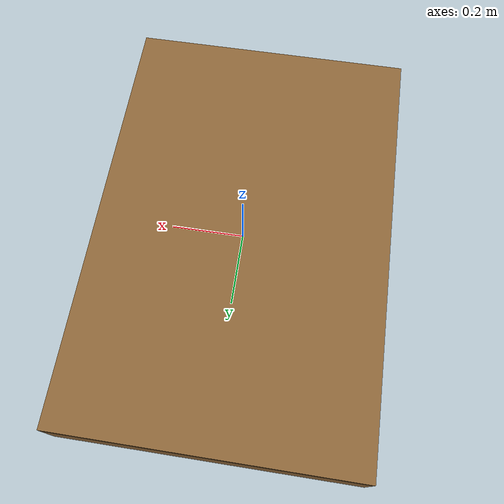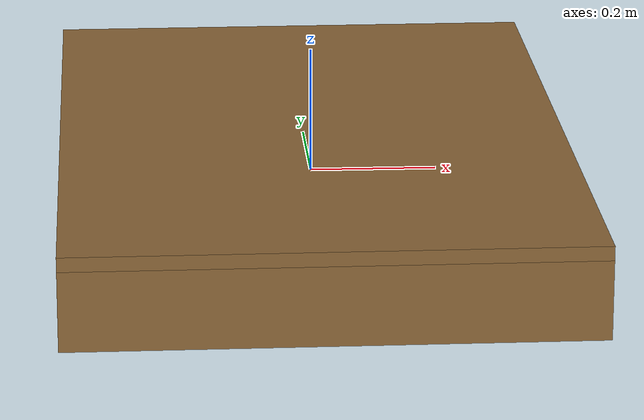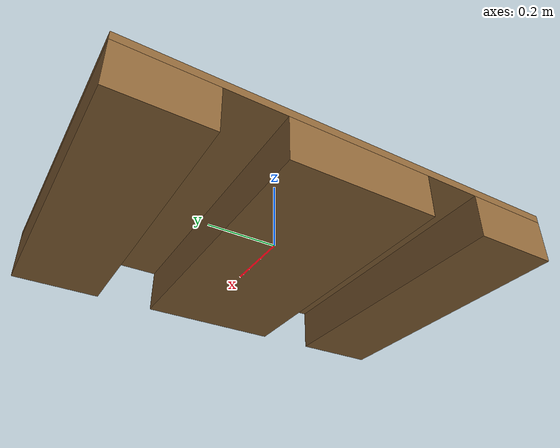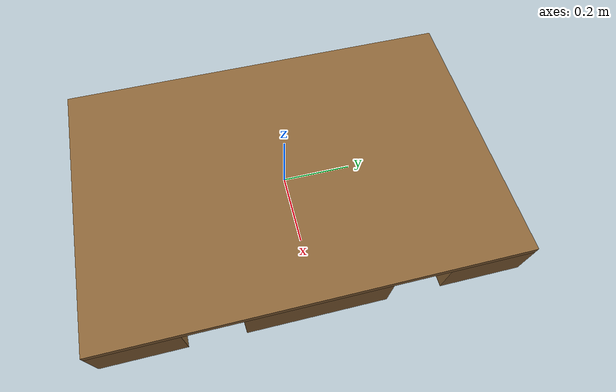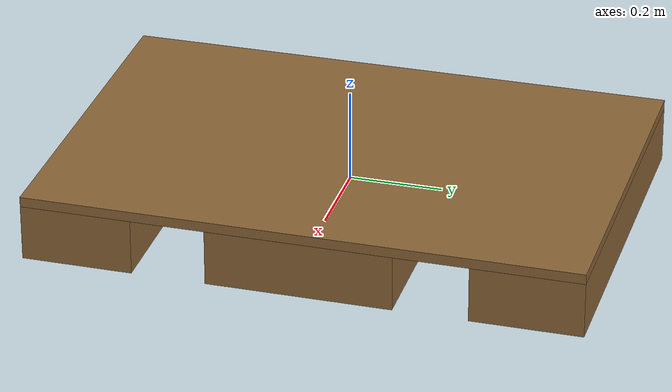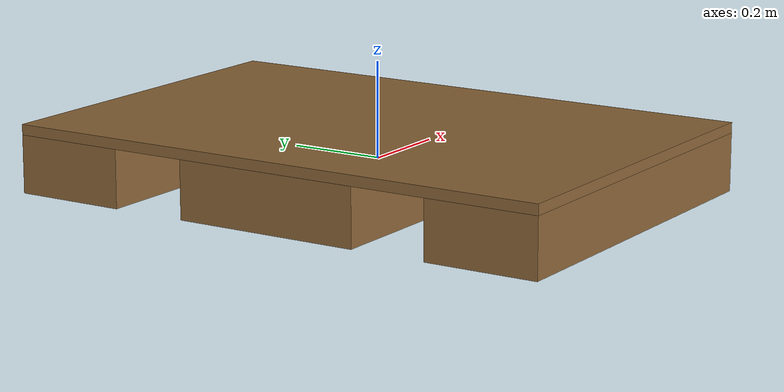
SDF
<?xml version="1.0"?>
<sdf version="1.9">
  <model name="pallet_s5">
    <static>false</static>
    <link name="pallet_body">
      <inertial>
        <mass>25.0</mass>
        <inertia>
          <ixx>3.043200</ixx><ixy>0</ixy><ixz>0</ixz>
          <iyy>1.376533</iyy><iyz>0</iyz>
          <izz>4.333333</izz>
        </inertia>
      </inertial>
      <collision name="deck">
        <pose>0.000000000 0.000000000 0.061000000 0 0 0</pose>
        <geometry><box><size>0.800000000 1.200000000 0.022000000</size></box></geometry>
        <material><ambient>0.550 0.400 0.220 1.000</ambient><diffuse>0.550 0.400 0.220 1.000</diffuse></material>
      </collision>
      <visual name="deck_vis">
        <pose>0.000000000 0.000000000 0.061000000 0 0 0</pose>
        <geometry><box><size>0.800000000 1.200000000 0.022000000</size></box></geometry>
        <material><ambient>0.550 0.400 0.220 1.000</ambient><diffuse>0.550 0.400 0.220 1.000</diffuse></material>
      </visual>
      <collision name="centre">
        <pose>0.000000000 0.000000000 -0.011000000 0 0 0</pose>
        <geometry><box><size>0.800000000 0.400000000 0.122000000</size></box></geometry>
        <material><ambient>0.550 0.400 0.220 1.000</ambient><diffuse>0.550 0.400 0.220 1.000</diffuse></material>
      </collision>
      <visual name="centre_vis">
        <pose>0.000000000 0.000000000 -0.011000000 0 0 0</pose>
        <geometry><box><size>0.800000000 0.400000000 0.122000000</size></box></geometry>
        <material><ambient>0.550 0.400 0.220 1.000</ambient><diffuse>0.550 0.400 0.220 1.000</diffuse></material>
      </visual>
      <collision name="outer_left">
        <pose>0.000000000 0.480000000 -0.011000000 0 0 0</pose>
        <geometry><box><size>0.800000000 0.240000000 0.122000000</size></box></geometry>
        <material><ambient>0.550 0.400 0.220 1.000</ambient><diffuse>0.550 0.400 0.220 1.000</diffuse></material>
      </collision>
      <visual name="outer_left_vis">
        <pose>0.000000000 0.480000000 -0.011000000 0 0 0</pose>
        <geometry><box><size>0.800000000 0.240000000 0.122000000</size></box></geometry>
        <material><ambient>0.550 0.400 0.220 1.000</ambient><diffuse>0.550 0.400 0.220 1.000</diffuse></material>
      </visual>
      <collision name="outer_right">
        <pose>0.000000000 -0.480000000 -0.011000000 0 0 0</pose>
        <geometry><box><size>0.800000000 0.240000000 0.122000000</size></box></geometry>
        <material><ambient>0.550 0.400 0.220 1.000</ambient><diffuse>0.550 0.400 0.220 1.000</diffuse></material>
      </collision>
      <visual name="outer_right_vis">
        <pose>0.000000000 -0.480000000 -0.011000000 0 0 0</pose>
        <geometry><box><size>0.800000000 0.240000000 0.122000000</size></box></geometry>
        <material><ambient>0.550 0.400 0.220 1.000</ambient><diffuse>0.550 0.400 0.220 1.000</diffuse></material>
      </visual>
    </link>
  </model>
</sdf>
